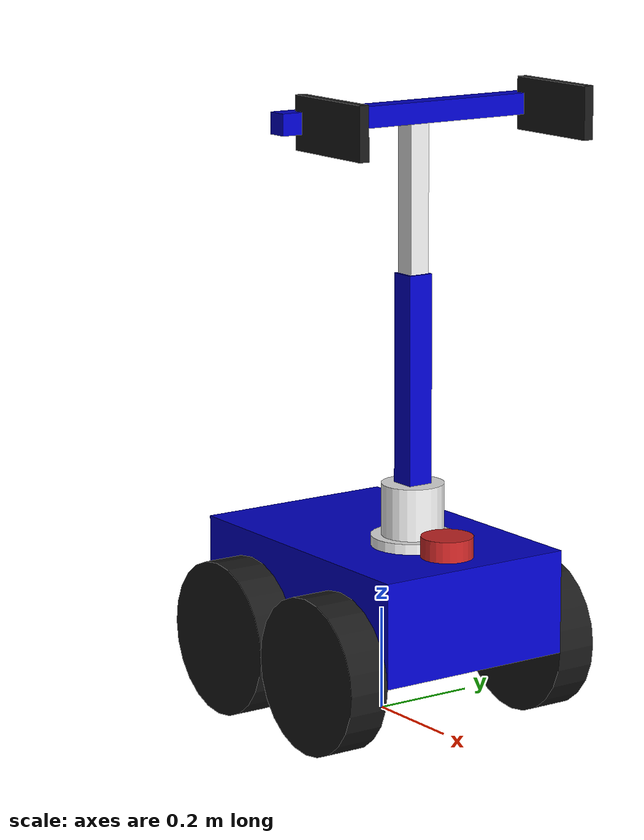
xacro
<?xml version="1.0"?>
<robot name="my_bot" xmlns:xacro="http://www.ros.org/wiki/xacro">
  <xacro:property name="body_link_x_dim" value="0.6"/>
  <xacro:property name="body_link_y_dim" value="0.4"/>
  <xacro:property name="body_link_z_dim" value="0.2"/>
  <xacro:property name="body_mass" value="50.0"/>
  <xacro:property name="wheel_link_radius" value="0.15"/>
  <xacro:property name="wheel_link_length" value="0.08"/>
  <xacro:property name="wheel_mass" value="2.0"/>
  <xacro:property name="wheel_link_z_location" value="-0.1"/>

  <xacro:include filename="gazebo_control.xacro" />

  <xacro:macro name="inertia_box" params="mass x y z *origin">
    <inertial>
      <xacro:insert_block name="origin"/>
      <mass value="${mass}"/>
      <inertia ixx="${(1/12) * mass * (y*y + z*z)}" ixy="0.0" ixz="0.0" iyy="${(1/12) * mass * (x*x + z*z)}" iyz="0.0" izz="${(1/12) * mass * (x*x + y*y)}"/>
    </inertial>
  </xacro:macro>

  <xacro:macro name="inertial_cylinder" params="mass length radius *origin">
    <inertial>
      <xacro:insert_block name="origin"/>
      <mass value="${mass}"/>
      <inertia ixx="${(1/12) * mass * (3*radius*radius + length*length)}" ixy="0.0" ixz="0.0" iyy="${(1/12) * mass * (3*radius*radius + length*length)}" iyz="0.0" izz="${(1/2) * mass * (radius*radius)}"/>
    </inertial>
  </xacro:macro>

  <link name="base_link"/>
  <joint name="base_joint" type="fixed">
    <parent link="base_link"/>
    <child link="body_link"/>
    <origin xyz="0 0 ${wheel_link_radius - wheel_link_z_location}" rpy="0 0 0"/>
  </joint>
   <joint name="base_footprint_joint" type="fixed">
   <parent link="base_link"/>
   <child link="base_footprint"/>
   <origin xyz="0 0 0" rpy="0 0 0"/>
  </joint>

  <link name="base_footprint">
  </link>

  <link name="body_link">
    <visual>
      <geometry><box size="${body_link_x_dim} ${body_link_y_dim} ${body_link_z_dim}"/></geometry>
      <material name="blue"><color rgba="0 0 0.8 1"/></material>
    </visual>
    <collision>
      <geometry><box size="${body_link_x_dim} ${body_link_y_dim} ${body_link_z_dim}"/></geometry>
    </collision>
    <xacro:inertia_box mass="${body_mass}" x="${body_link_x_dim}" y="${body_link_y_dim}" z="${body_link_z_dim}">
      <origin xyz="0 0 0" rpy="0 0 0"/>
    </xacro:inertia_box>
  </link>
  <gazebo reference="body_link"><material>Gazebo/Blue</material></gazebo>

  <xacro:macro name="wheel" params="name x_reflect y_reflect f_mu1 f_mu2">
    <joint name="${name}_joint" type="continuous">
      <parent link="body_link"/>
      <child link="${name}_link"/>
      <origin xyz="${x_reflect * (body_link_x_dim/2 - wheel_link_radius)} ${y_reflect * (body_link_y_dim/2 + wheel_link_length/2)} ${wheel_link_z_location}" rpy="0 0 0"/>
      <axis xyz="0 1 0"/>
    </joint>
    <link name="${name}_link">
      <visual>
        <origin rpy="1.570795 0 0" xyz="0 0 0"/>
        <geometry><cylinder length="${wheel_link_length}" radius="${wheel_link_radius}"/></geometry>
        <material name="black"><color rgba="0.1 0.1 0.1 1"/></material>
      </visual>
      <collision>
        <origin rpy="1.570795 0 0" xyz="0 0 0"/>
        <geometry><sphere radius="${wheel_link_radius}"/></geometry>
      </collision>
      <xacro:inertial_cylinder mass="${wheel_mass}" length="${wheel_link_length}" radius="${wheel_link_radius}">
        <origin xyz="0 0 0" rpy="0 0 0"/>
      </xacro:inertial_cylinder>
    </link>
    <gazebo reference="${name}_link">
      <material>Gazebo/Black</material>
      <mu1>${f_mu1}</mu1>
      <mu2>${f_mu2}</mu2>
    </gazebo>
  </xacro:macro>

  <!-- 🌟 ปล่อยล้อหน้าให้ลื่นเป็นปกติ แต่เพิ่มความหนึบให้ล้อหลังเพื่อปีนเนินและเลี้ยวแบบไม่ไถล -->
  <xacro:wheel name="front_left"  x_reflect="1"  y_reflect="1"  f_mu1="0.001" f_mu2="0.001" />
  <xacro:wheel name="front_right" x_reflect="1"  y_reflect="-1" f_mu1="0.001" f_mu2="0.001" />
  <xacro:wheel name="back_left"   x_reflect="-1" y_reflect="1"  f_mu1="200.0" f_mu2="200.0" />
  <xacro:wheel name="back_right"  x_reflect="-1" y_reflect="-1" f_mu1="200.0" f_mu2="200.0" />

  <joint name="arm_base_joint" type="revolute">
    <parent link="arm_mount_link"/>
    <child link="arm_base_link"/>
    <origin xyz="0 0 0.02" rpy="0 0 0"/>
    <axis xyz="0 0 1"/>
    <limit lower="-3.14" upper="3.14" effort="500.0" velocity="1.0"/>
    <dynamics damping="10.0" friction="1.0"/>
  </joint>

  <link name="arm_base_link">
    <visual>
      <origin xyz="0 0 0.05" rpy="0 0 0"/>
      <geometry><cylinder radius="0.06" length="0.1"/></geometry>
      <material name="white"/>
    </visual>
    <collision>
      <origin xyz="0 0 0.05" rpy="0 0 0"/>
      <geometry><cylinder radius="0.06" length="0.1"/></geometry>
    </collision>
    <xacro:inertial_cylinder mass="2.0" radius="0.06" length="0.1">
      <origin xyz="0 0 0.05" rpy="0 0 0"/>
    </xacro:inertial_cylinder>
  </link>

  <joint name="shoulder_joint" type="revolute">
    <parent link="arm_base_link"/>
    <child link="shoulder_link"/>
    <origin xyz="0 0 0.1" rpy="0 0 0"/>
    <axis xyz="0 1 0"/>
    <limit lower="-1.57" upper="1.57" effort="1000.0" velocity="0.5"/>
    <dynamics damping="50.0" friction="3.0"/>
  </joint>

  <link name="shoulder_link">
    <visual>
      <origin xyz="0 0 0.2" rpy="0 0 0"/>
      <geometry><box size="0.05 0.05 0.4"/></geometry>
      <material name="blue"/>
    </visual>
    <collision>
      <origin xyz="0 0 0.2" rpy="0 0 0"/>
      <geometry><box size="0.05 0.05 0.4"/></geometry>
    </collision>
    <xacro:inertia_box mass="3.0" x="0.05" y="0.05" z="0.4">
      <origin xyz="0 0 0.2" rpy="0 0 0"/>
    </xacro:inertia_box>
  </link>

  <gazebo reference="arm_base_link"><material>Gazebo/White</material></gazebo>
  <gazebo reference="shoulder_link"><material>Gazebo/Blue</material></gazebo>
  <link name="arm_mount_link">
    <visual>
      <geometry><cylinder radius="0.08" length="0.04"/></geometry>
      <material name="white"/>
    </visual>
    <collision>
      <geometry><cylinder radius="0.08" length="0.04"/></geometry>
    </collision>
    <xacro:inertial_cylinder mass="5.0" radius="0.08" length="0.04">
      <origin xyz="0 0 0" rpy="0 0 0"/>
    </xacro:inertial_cylinder>
  </link>

  <joint name="arm_mount_joint" type="fixed">
    <parent link="body_link"/>
    <child link="arm_mount_link"/>
    <origin xyz="0.1 0 ${body_link_z_dim/2}" rpy="0 0 0"/>
  </joint>

  <joint name="forearm_joint" type="revolute">
    <parent link="shoulder_link"/>
    <child link="forearm_link"/>
    <origin xyz="0 0 0.4" rpy="0 0 0"/>
    <axis xyz="0 1 0"/>
    <limit lower="-2.0" upper="2.0" effort="800.0" velocity="1.0"/>
    <dynamics damping="80.0" friction="5.0"/>
  </joint>

  <link name="forearm_link">
    <visual>
      <origin xyz="0 0 0.15" rpy="0 0 0"/>
      <geometry><box size="0.04 0.04 0.3"/></geometry>
      <material name="white"/>
    </visual>
    <collision>
      <origin xyz="0 0 0.15" rpy="0 0 0"/>
      <geometry><box size="0.04 0.04 0.3"/></geometry>
    </collision>
    <xacro:inertia_box mass="2.0" x="0.04" y="0.04" z="0.3">
      <origin xyz="0 0 0.15" rpy="0 0 0"/>
    </xacro:inertia_box>
  </link>

  <joint name="hand_joint" type="fixed">
    <parent link="forearm_link"/>
    <child link="hand_link"/>
    <origin xyz="0 0 0.3" rpy="0 0 0"/>
  </joint>

  <link name="hand_link">
    <visual>
      <geometry><box size="0.04 0.6 0.04"/></geometry>
      <material name="blue"/>
    </visual>
    <xacro:inertia_box mass="1.0" x="0.04" y="0.6" z="0.04">
      <origin xyz="0 0 0" rpy="0 0 0"/>
    </xacro:inertia_box>
  </link>

 <xacro:macro name="finger" params="name y_reflect">
    <joint name="${name}_joint" type="prismatic">
      <parent link="hand_link"/>
      <child link="${name}_link"/>
      <origin xyz="0.1 ${y_reflect * 0.25} 0" rpy="0 0 0"/>
      <axis xyz="0 1 0"/>
      <limit lower="-0.05" upper="0.08" effort="500.0" velocity="0.5"/>
    </joint>

   <link name="${name}_link">
      <visual>
        <geometry><box size="0.2 0.02 0.1"/></geometry>
        <material name="black"/>
      </visual>
      <collision>
        <geometry><box size="0.2 0.02 0.1"/></geometry>
      </collision>
      <xacro:inertia_box mass="0.5" x="0.2" y="0.02" z="0.1">
        <origin xyz="0 0 0" rpy="0 0 0"/>
      </xacro:inertia_box>
    </link>
  </xacro:macro>

  <xacro:finger name="left_finger" y_reflect="1" />
  <xacro:finger name="right_finger" y_reflect="-1" />

  <xacro:macro name="inertia_cylinder" params="mass length radius *origin">
        <inertial>
            <xacro:insert_block name="origin"/>
            <mass value="${mass}" />
            <inertia ixx="${(1/12) * mass * (3*radius*radius + length*length)}" ixy="0.0" ixz="0.0"
                     iyy="${(1/12) * mass * (3*radius*radius + length*length)}" iyz="0.0"
                     izz="${(1/2) * mass * (radius*radius)}" />
        </inertial>
    </xacro:macro>

  <joint name="laser_joint" type="fixed">
        <parent link="body_link"/>
        <child link="laser_frame"/>
        <origin xyz="0.21 0 0.12" rpy="0 0 0"/> </joint>

    <link name="laser_frame">
        <visual>
            <geometry>
                <cylinder radius="0.05" length="0.04"/>
            </geometry>
            <material name="red"/>
        </visual>
        <collision>
            <geometry>
                <cylinder radius="0.05" length="0.04"/>
            </geometry>
        </collision>
        <xacro:inertia_cylinder mass="0.1" length="0.04" radius="0.05">
            <origin xyz="0 0 0" rpy="0 0 0"/>
        </xacro:inertia_cylinder>
    </link>

    <gazebo reference="laser_frame">
        <material>Gazebo/Red</material>
        <sensor name="laser" type="ray">
            <pose> 0 0 0 0 0 0 </pose>
            <visualize>true</visualize>
            <update_rate>10</update_rate>
            <ray>
                <scan>
                    <horizontal>
                        <samples>360</samples>
                        <min_angle>-3.14</min_angle>
                        <max_angle>3.14</max_angle>
                    </horizontal>
                </scan>
                <range>
                    <min>0.2</min>
                    <max>12.0</max>
                </range>
            </ray>
            <plugin name="laser_controller" filename="libgazebo_ros_ray_sensor.so">
            <ros>
                <remapping>~/out:=scan</remapping>
            </ros>
            <output_type>sensor_msgs/LaserScan</output_type>
            <frame_name>laser_frame</frame_name>
        </plugin>
        </sensor>
    </gazebo>
    <joint name="imu_joint" type="fixed">
    <parent link="body_link"/>
    <child link="imu_link"/>
    <origin xyz="0 0 0.1" rpy="0 0 0"/>
  </joint>
  <link name="imu_link"/>

  <gazebo reference="imu_link">
    <sensor name="imu_sensor" type="imu">
      <plugin name="imu_plugin" filename="libgazebo_ros_imu_sensor.so">
        <ros>
          <remapping>~/out:=imu/data</remapping>
        </ros>
        <initial_orientation_as_reference>false</initial_orientation_as_reference>
      </plugin>
      <always_on>true</always_on>
      <update_rate>100</update_rate>
    </sensor>
  </gazebo>

</robot>
